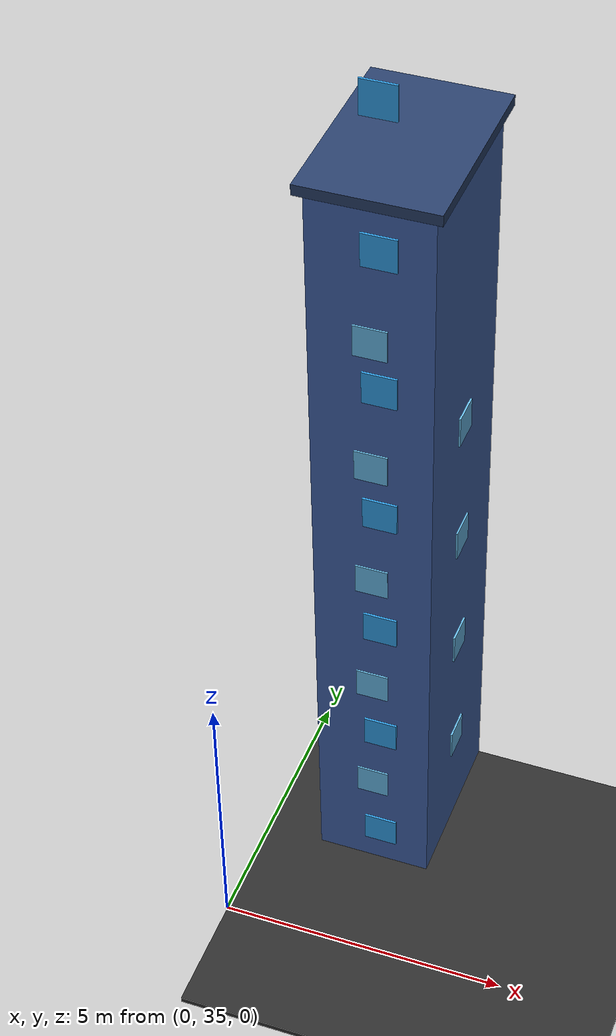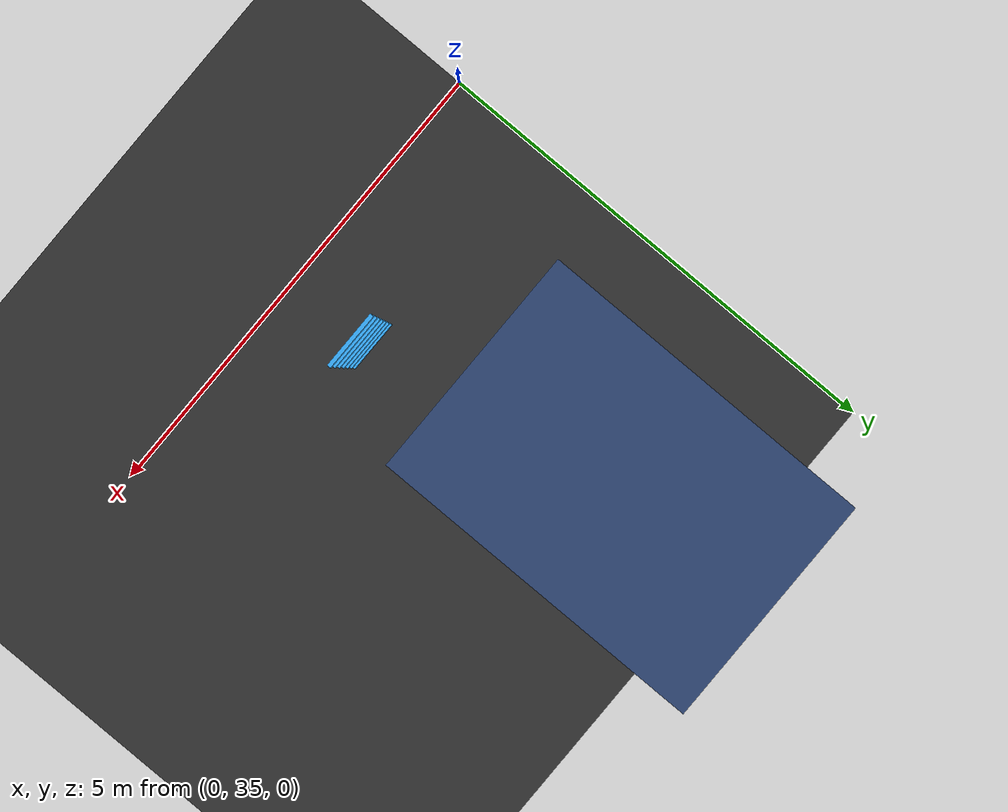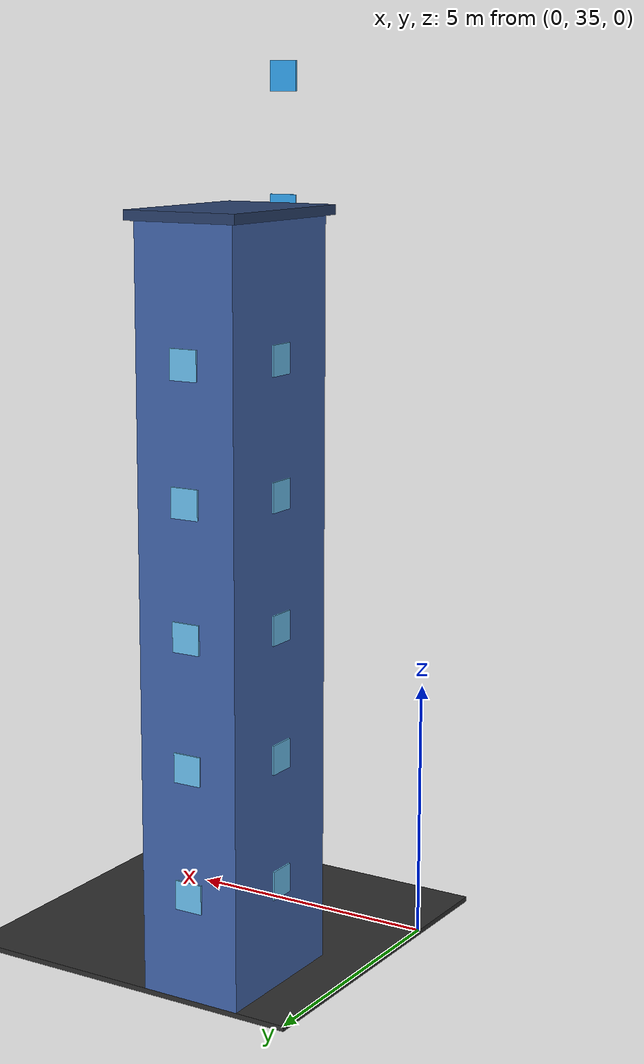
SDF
<sdf version="1.10">
 <world name="city_uav_demo">
  <model name="ground_plane">
   <static>true</static>
   <pose>20.0000 20.0000 -0.0500 0 0 0.0000</pose>
   <link name="link">
    <collision name="collision"><geometry><box><size>40.0000 40.0000 0.1000</size></box></geometry></collision>
    <visual name="visual">
     <geometry><box><size>40.0000 40.0000 0.1000</size></box></geometry>
     <material><ambient>0.18 0.18 0.18 1.0</ambient><diffuse>0.18 0.18 0.18 1.0</diffuse></material>
    </visual>
   </link>
  </model>
  <model name="building_2_window_back_0">
   <static>true</static>
   <pose>2.5000 36.0120 2.0000 0 0 0.0000</pose>
   <link name="link">
    <visual name="visual">
     <geometry><box><size>0.5500 0.0350 0.5500</size></box></geometry>
     <material><ambient>0.20 0.65 0.95 1.0</ambient><diffuse>0.20 0.65 0.95 1.0</diffuse></material>
    </visual>
   </link>
  </model>
  <model name="building_2_window_back_1">
   <static>true</static>
   <pose>2.5000 36.0120 4.4000 0 0 0.0000</pose>
   <link name="link">
    <visual name="visual">
     <geometry><box><size>0.5500 0.0350 0.5500</size></box></geometry>
     <material><ambient>0.20 0.65 0.95 1.0</ambient><diffuse>0.20 0.65 0.95 1.0</diffuse></material>
    </visual>
   </link>
  </model>
  <model name="building_2_window_back_2">
   <static>true</static>
   <pose>2.5000 36.0120 6.8000 0 0 0.0000</pose>
   <link name="link">
    <visual name="visual">
     <geometry><box><size>0.5500 0.0350 0.5500</size></box></geometry>
     <material><ambient>0.20 0.65 0.95 1.0</ambient><diffuse>0.20 0.65 0.95 1.0</diffuse></material>
    </visual>
   </link>
  </model>
  <model name="building_2_window_back_3">
   <static>true</static>
   <pose>2.5000 36.0120 9.2000 0 0 0.0000</pose>
   <link name="link">
    <visual name="visual">
     <geometry><box><size>0.5500 0.0350 0.5500</size></box></geometry>
     <material><ambient>0.20 0.65 0.95 1.0</ambient><diffuse>0.20 0.65 0.95 1.0</diffuse></material>
    </visual>
   </link>
  </model>
  <model name="building_2_window_back_4">
   <static>true</static>
   <pose>2.5000 36.0120 11.6000 0 0 0.0000</pose>
   <link name="link">
    <visual name="visual">
     <geometry><box><size>0.5500 0.0350 0.5500</size></box></geometry>
     <material><ambient>0.20 0.65 0.95 1.0</ambient><diffuse>0.20 0.65 0.95 1.0</diffuse></material>
    </visual>
   </link>
  </model>
  <model name="building_2_window_back_5">
   <static>true</static>
   <pose>2.5000 36.0120 14.0000 0 0 0.0000</pose>
   <link name="link">
    <visual name="visual">
     <geometry><box><size>0.5500 0.0350 0.5500</size></box></geometry>
     <material><ambient>0.20 0.65 0.95 1.0</ambient><diffuse>0.20 0.65 0.95 1.0</diffuse></material>
    </visual>
   </link>
  </model>
  <model name="building_2_window_back_6">
   <static>true</static>
   <pose>2.5000 36.0120 16.4000 0 0 0.0000</pose>
   <link name="link">
    <visual name="visual">
     <geometry><box><size>0.5500 0.0350 0.5500</size></box></geometry>
     <material><ambient>0.20 0.65 0.95 1.0</ambient><diffuse>0.20 0.65 0.95 1.0</diffuse></material>
    </visual>
   </link>
  </model>
  <model name="building_13_body">
   <static>true</static>
   <pose>2.0000 38.5000 7.0000 0 0 0.0000</pose>
   <link name="link">
    <collision name="collision"><geometry><box><size>2.0000 3.0000 14.0000</size></box></geometry></collision>
    <visual name="visual">
     <geometry><box><size>2.0000 3.0000 14.0000</size></box></geometry>
     <material><ambient>0.26 0.40 0.68 1.0</ambient><diffuse>0.26 0.40 0.68 1.0</diffuse></material>
    </visual>
   </link>
  </model>
  <model name="building_13_roof">
   <static>true</static>
   <pose>2.0000 38.5000 14.0900 0 0 0.0000</pose>
   <link name="link">
    <collision name="collision"><geometry><box><size>2.2500 3.2500 0.1800</size></box></geometry></collision>
    <visual name="visual">
     <geometry><box><size>2.2500 3.2500 0.1800</size></box></geometry>
     <material><ambient>0.16 0.25 0.42 1.0</ambient><diffuse>0.16 0.25 0.42 1.0</diffuse></material>
    </visual>
   </link>
  </model>
  <model name="building_13_window_front_0">
   <static>true</static>
   <pose>2.0000 36.9880 2.0000 0 0 0.0000</pose>
   <link name="link">
    <visual name="visual">
     <geometry><box><size>0.5500 0.0350 0.5500</size></box></geometry>
     <material><ambient>0.42 0.76 0.95 1.0</ambient><diffuse>0.42 0.76 0.95 1.0</diffuse></material>
    </visual>
   </link>
  </model>
  <model name="building_13_window_front_1">
   <static>true</static>
   <pose>2.0000 36.9880 4.4000 0 0 0.0000</pose>
   <link name="link">
    <visual name="visual">
     <geometry><box><size>0.5500 0.0350 0.5500</size></box></geometry>
     <material><ambient>0.42 0.76 0.95 1.0</ambient><diffuse>0.42 0.76 0.95 1.0</diffuse></material>
    </visual>
   </link>
  </model>
  <model name="building_13_window_front_2">
   <static>true</static>
   <pose>2.0000 36.9880 6.8000 0 0 0.0000</pose>
   <link name="link">
    <visual name="visual">
     <geometry><box><size>0.5500 0.0350 0.5500</size></box></geometry>
     <material><ambient>0.42 0.76 0.95 1.0</ambient><diffuse>0.42 0.76 0.95 1.0</diffuse></material>
    </visual>
   </link>
  </model>
  <model name="building_13_window_front_3">
   <static>true</static>
   <pose>2.0000 36.9880 9.2000 0 0 0.0000</pose>
   <link name="link">
    <visual name="visual">
     <geometry><box><size>0.5500 0.0350 0.5500</size></box></geometry>
     <material><ambient>0.42 0.76 0.95 1.0</ambient><diffuse>0.42 0.76 0.95 1.0</diffuse></material>
    </visual>
   </link>
  </model>
  <model name="building_13_window_front_4">
   <static>true</static>
   <pose>2.0000 36.9880 11.6000 0 0 0.0000</pose>
   <link name="link">
    <visual name="visual">
     <geometry><box><size>0.5500 0.0350 0.5500</size></box></geometry>
     <material><ambient>0.42 0.76 0.95 1.0</ambient><diffuse>0.42 0.76 0.95 1.0</diffuse></material>
    </visual>
   </link>
  </model>
  <model name="building_13_window_back_0">
   <static>true</static>
   <pose>2.0000 40.0120 2.0000 0 0 0.0000</pose>
   <link name="link">
    <visual name="visual">
     <geometry><box><size>0.5500 0.0350 0.5500</size></box></geometry>
     <material><ambient>0.42 0.76 0.95 1.0</ambient><diffuse>0.42 0.76 0.95 1.0</diffuse></material>
    </visual>
   </link>
  </model>
  <model name="building_13_window_back_1">
   <static>true</static>
   <pose>2.0000 40.0120 4.4000 0 0 0.0000</pose>
   <link name="link">
    <visual name="visual">
     <geometry><box><size>0.5500 0.0350 0.5500</size></box></geometry>
     <material><ambient>0.42 0.76 0.95 1.0</ambient><diffuse>0.42 0.76 0.95 1.0</diffuse></material>
    </visual>
   </link>
  </model>
  <model name="building_13_window_back_2">
   <static>true</static>
   <pose>2.0000 40.0120 6.8000 0 0 0.0000</pose>
   <link name="link">
    <visual name="visual">
     <geometry><box><size>0.5500 0.0350 0.5500</size></box></geometry>
     <material><ambient>0.42 0.76 0.95 1.0</ambient><diffuse>0.42 0.76 0.95 1.0</diffuse></material>
    </visual>
   </link>
  </model>
  <model name="building_13_window_back_3">
   <static>true</static>
   <pose>2.0000 40.0120 9.2000 0 0 0.0000</pose>
   <link name="link">
    <visual name="visual">
     <geometry><box><size>0.5500 0.0350 0.5500</size></box></geometry>
     <material><ambient>0.42 0.76 0.95 1.0</ambient><diffuse>0.42 0.76 0.95 1.0</diffuse></material>
    </visual>
   </link>
  </model>
  <model name="building_13_window_back_4">
   <static>true</static>
   <pose>2.0000 40.0120 11.6000 0 0 0.0000</pose>
   <link name="link">
    <visual name="visual">
     <geometry><box><size>0.5500 0.0350 0.5500</size></box></geometry>
     <material><ambient>0.42 0.76 0.95 1.0</ambient><diffuse>0.42 0.76 0.95 1.0</diffuse></material>
    </visual>
   </link>
  </model>
  <model name="building_13_window_left_0">
   <static>true</static>
   <pose>0.9880 38.5000 2.0000 0 0 0.0000</pose>
   <link name="link">
    <visual name="visual">
     <geometry><box><size>0.0350 0.5500 0.5500</size></box></geometry>
     <material><ambient>0.42 0.76 0.95 1.0</ambient><diffuse>0.42 0.76 0.95 1.0</diffuse></material>
    </visual>
   </link>
  </model>
  <model name="building_13_window_left_1">
   <static>true</static>
   <pose>0.9880 38.5000 4.4000 0 0 0.0000</pose>
   <link name="link">
    <visual name="visual">
     <geometry><box><size>0.0350 0.5500 0.5500</size></box></geometry>
     <material><ambient>0.42 0.76 0.95 1.0</ambient><diffuse>0.42 0.76 0.95 1.0</diffuse></material>
    </visual>
   </link>
  </model>
  <model name="building_13_window_left_2">
   <static>true</static>
   <pose>0.9880 38.5000 6.8000 0 0 0.0000</pose>
   <link name="link">
    <visual name="visual">
     <geometry><box><size>0.0350 0.5500 0.5500</size></box></geometry>
     <material><ambient>0.42 0.76 0.95 1.0</ambient><diffuse>0.42 0.76 0.95 1.0</diffuse></material>
    </visual>
   </link>
  </model>
  <model name="building_13_window_left_3">
   <static>true</static>
   <pose>0.9880 38.5000 9.2000 0 0 0.0000</pose>
   <link name="link">
    <visual name="visual">
     <geometry><box><size>0.0350 0.5500 0.5500</size></box></geometry>
     <material><ambient>0.42 0.76 0.95 1.0</ambient><diffuse>0.42 0.76 0.95 1.0</diffuse></material>
    </visual>
   </link>
  </model>
  <model name="building_13_window_left_4">
   <static>true</static>
   <pose>0.9880 38.5000 11.6000 0 0 0.0000</pose>
   <link name="link">
    <visual name="visual">
     <geometry><box><size>0.0350 0.5500 0.5500</size></box></geometry>
     <material><ambient>0.42 0.76 0.95 1.0</ambient><diffuse>0.42 0.76 0.95 1.0</diffuse></material>
    </visual>
   </link>
  </model>
  <model name="building_13_window_right_0">
   <static>true</static>
   <pose>3.0120 38.5000 2.0000 0 0 0.0000</pose>
   <link name="link">
    <visual name="visual">
     <geometry><box><size>0.0350 0.5500 0.5500</size></box></geometry>
     <material><ambient>0.42 0.76 0.95 1.0</ambient><diffuse>0.42 0.76 0.95 1.0</diffuse></material>
    </visual>
   </link>
  </model>
  <model name="building_13_window_right_1">
   <static>true</static>
   <pose>3.0120 38.5000 4.4000 0 0 0.0000</pose>
   <link name="link">
    <visual name="visual">
     <geometry><box><size>0.0350 0.5500 0.5500</size></box></geometry>
     <material><ambient>0.42 0.76 0.95 1.0</ambient><diffuse>0.42 0.76 0.95 1.0</diffuse></material>
    </visual>
   </link>
  </model>
  <model name="building_13_window_right_2">
   <static>true</static>
   <pose>3.0120 38.5000 6.8000 0 0 0.0000</pose>
   <link name="link">
    <visual name="visual">
     <geometry><box><size>0.0350 0.5500 0.5500</size></box></geometry>
     <material><ambient>0.42 0.76 0.95 1.0</ambient><diffuse>0.42 0.76 0.95 1.0</diffuse></material>
    </visual>
   </link>
  </model>
  <model name="building_13_window_right_3">
   <static>true</static>
   <pose>3.0120 38.5000 9.2000 0 0 0.0000</pose>
   <link name="link">
    <visual name="visual">
     <geometry><box><size>0.0350 0.5500 0.5500</size></box></geometry>
     <material><ambient>0.42 0.76 0.95 1.0</ambient><diffuse>0.42 0.76 0.95 1.0</diffuse></material>
    </visual>
   </link>
  </model>
 </world>
</sdf>
